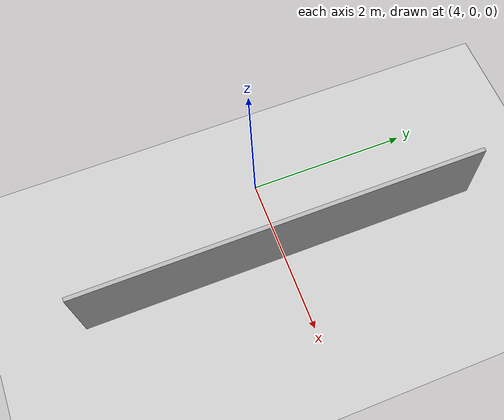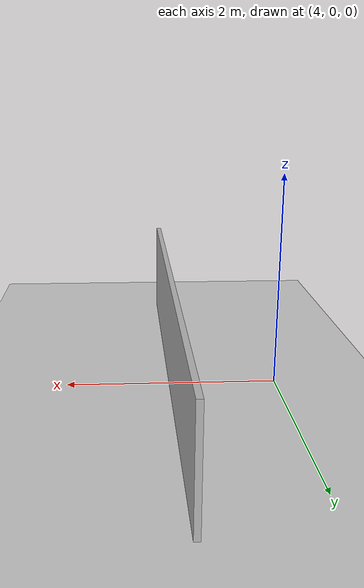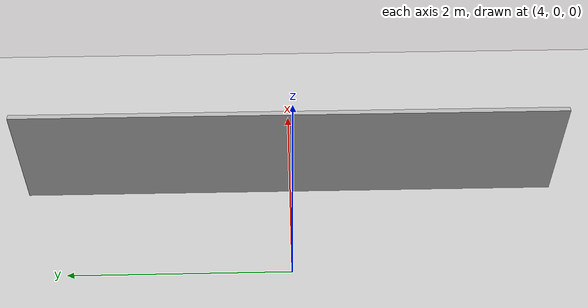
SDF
<?xml version="1.0" ?>
<sdf version="1.8">
  <world name="maze_world">
    <physics name="1ms" type="ignored">
      <max_step_size>0.001</max_step_size>
      <real_time_factor>1.0</real_time_factor>
    </physics>

    <plugin filename="gz-sim-physics-system" name="gz::sim::systems::Physics" />
    <plugin filename="gz-sim-user-commands-system" name="gz::sim::systems::UserCommands" />
    <plugin filename="gz-sim-scene-broadcaster-system" name="gz::sim::systems::SceneBroadcaster" />

    <plugin filename="gz-sim-sensors-system" name="gz::sim::systems::Sensors">
      <render_engine>ogre</render_engine>
    </plugin>

    <scene>
      <ambient>0.8 0.8 0.8 1</ambient> <background>0.8 0.8 0.8 1</background>
      <grid>true</grid>
    </scene>

    <model name="ground_plane">
      <static>true</static>
      <link name="link">
        <collision name="collision">
          <geometry><plane><normal>0 0 1</normal><size>100 100</size></plane></geometry>
        </collision>
        <visual name="visual">
          <geometry><plane><normal>0 0 1</normal><size>100 100</size></plane></geometry>
          <material><ambient>0.8 0.8 0.8 1</ambient><diffuse>0.8 0.8 0.8 1</diffuse></material>
        </visual>
      </link>
    </model>

    <model name="box_maze">
      <static>true</static>
      <link name="walls">
        <visual name="w1_vis"><pose>5 0 0.5 0 0 0</pose><geometry><box><size>0.05 5 1</size></box></geometry></visual>
        <collision name="w1_col"><pose>5 0 0.5 0 0 0</pose><geometry><box><size>0.05 5 1</size></box></geometry></collision>
      </link>
    </model>
  </world>
</sdf>
